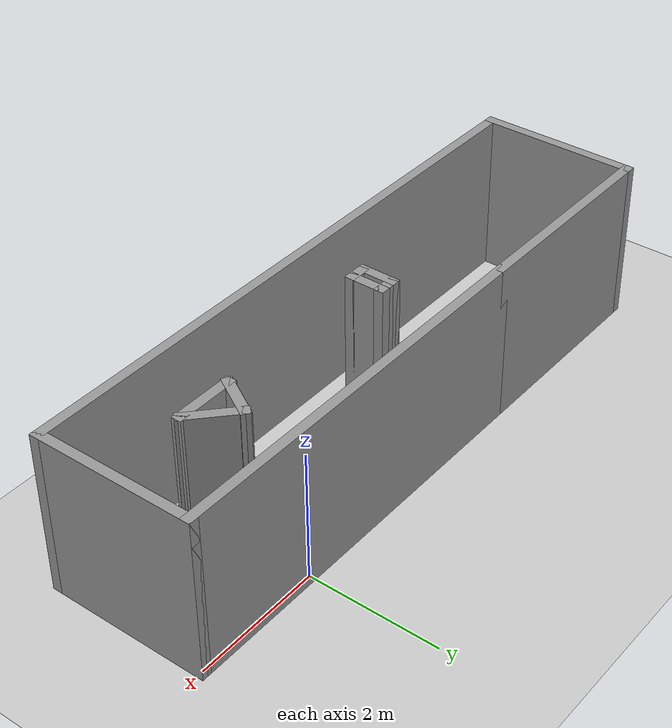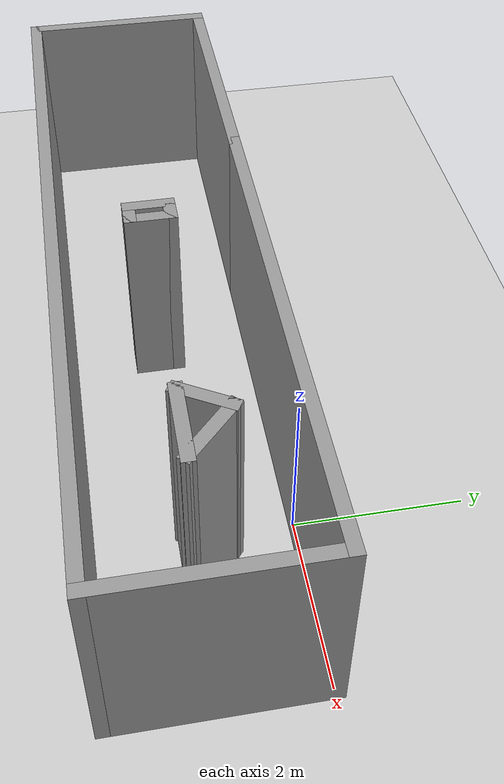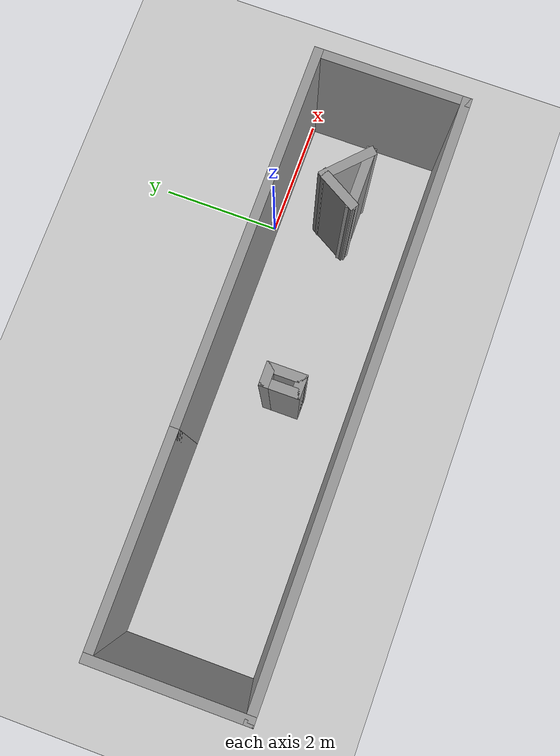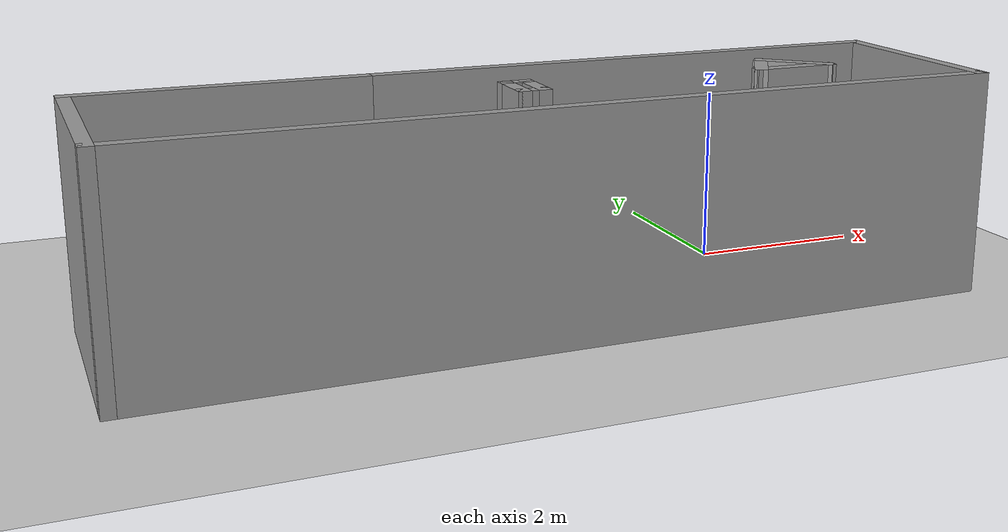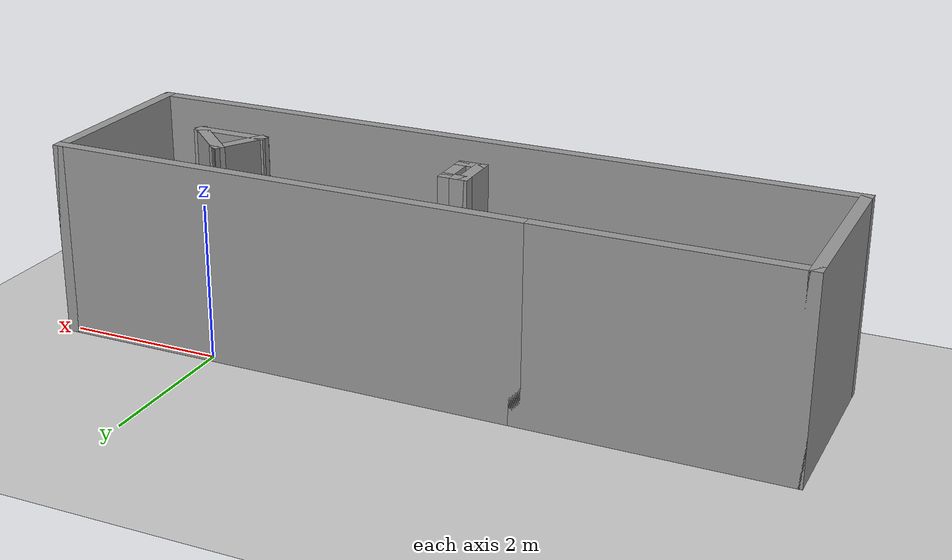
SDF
<sdf version="1.7">
 <world name="default">
  <light name="sun" type="directional">
   <pose>0 0 10 0 -0 0</pose>
   <diffuse>0.8 0.8 0.8 1</diffuse>
   <specular>0.2 0.2 0.2 1</specular>
   <attenuation>
    <range>1000</range>
    <constant>0.9</constant>
    <linear>0.01</linear>
    <quadratic>0.001</quadratic>
   </attenuation>
   <direction>-0.5 0.1 -0.9</direction>
   <spot><inner_angle>0</inner_angle><outer_angle>0</outer_angle><falloff>0</falloff></spot>
  </light>
  <model name="ground_plane">
   <static>1</static>
   <link name="link">
    <collision name="collision">
     <geometry><plane><normal>0 0 1</normal><size>100 100</size></plane></geometry>
     <surface>
      <contact><collide_bitmask>65535</collide_bitmask></contact>
      <friction><ode><mu>100</mu><mu2>50</mu2></ode></friction>
     </surface>
    </collision>
    <visual name="visual">
     <cast_shadows>0</cast_shadows>
     <geometry><plane><normal>0 0 1</normal><size>100 100</size></plane></geometry>
     <material>
      <script><uri>file://media/materials/scripts/gazebo.material</uri><name>Gazebo/Grey</name></script>
     </material>
    </visual>
   </link>
  </model>
  <gravity>0 0 -9.8</gravity>
  <magnetic_field>6e-06 2.3e-05 -4.2e-05</magnetic_field>
  <atmosphere type="adiabatic"/>
  <physics type="ode">
   <max_step_size>0.001</max_step_size>
   <real_time_factor>1</real_time_factor>
   <real_time_update_rate>1000</real_time_update_rate>
  </physics>
  <scene><ambient>0.4 0.4 0.4 1</ambient><background>0.7 0.7 0.7 1</background><shadows>1</shadows></scene>
  <audio><device>default</device></audio>
  <spherical_coordinates>
   <surface_model>EARTH_WGS84</surface_model>
   <latitude_deg>0</latitude_deg>
   <longitude_deg>0</longitude_deg>
   <elevation>0</elevation>
   <heading_deg>0</heading_deg>
  </spherical_coordinates>
  <model name="Untitled">
   <pose>-2.64542 -1.14959 0 0 -0 0</pose>
   <link name="Wall_0">
    <collision name="Wall_0_Collision">
     <geometry><box><size>6.25 0.15 2.5</size></box></geometry>
     <pose>0 0 1.25 0 -0 0</pose>
    </collision>
    <visual name="Wall_0_Visual">
     <pose>0 0 1.25 0 -0 0</pose>
     <geometry><box><size>6.25 0.15 2.5</size></box></geometry>
     <material>
      <script><uri>file://media/materials/scripts/gazebo.material</uri><name>Gazebo/Grey</name></script>
      <ambient>1 1 1 1</ambient>
     </material>
     <meta><layer>0</layer></meta>
    </visual>
    <pose>1.625 1.175 0 0 -0 0</pose>
   </link>
   <link name="Wall_1">
    <collision name="Wall_1_Collision">
     <geometry><box><size>2.5 0.15 2.5</size></box></geometry>
     <pose>0 0 1.25 0 -0 0</pose>
    </collision>
    <visual name="Wall_1_Visual">
     <pose>0 0 1.25 0 -0 0</pose>
     <geometry><box><size>2.5 0.15 2.5</size></box></geometry>
     <material>
      <script><uri>file://media/materials/scripts/gazebo.material</uri><name>Gazebo/Grey</name></script>
      <ambient>1 1 1 1</ambient>
     </material>
     <meta><layer>0</layer></meta>
    </visual>
    <pose>4.675 0 0 0 -0 -1.5708</pose>
   </link>
   <link name="Wall_11">
    <collision name="Wall_11_Collision">
     <geometry><box><size>0.75 0.15 2.5</size></box></geometry>
     <pose>0 0 1.25 0 -0 0</pose>
    </collision>
    <visual name="Wall_11_Visual">
     <pose>0 0 1.25 0 -0 0</pose>
     <geometry><box><size>0.75 0.15 2.5</size></box></geometry>
     <material>
      <script><uri>file://media/materials/scripts/gazebo.material</uri><name>Gazebo/Grey</name></script>
      <ambient>1 1 1 1</ambient>
     </material>
     <meta><layer>0</layer></meta>
    </visual>
    <pose>2.74488 0.172199 0 0 -0 -2.0944</pose>
   </link>
   <link name="Wall_12">
    <collision name="Wall_12_Collision">
     <geometry><box><size>1 0.15 2.5</size></box></geometry>
     <pose>0 0 1.25 0 -0 0</pose>
    </collision>
    <visual name="Wall_12_Visual">
     <pose>0 0 1.25 0 -0 0</pose>
     <geometry><box><size>1 0.15 2.5</size></box></geometry>
     <material>
      <script><uri>file://media/materials/scripts/gazebo.material</uri><name>Gazebo/Grey</name></script>
      <ambient>1 1 1 1</ambient>
     </material>
     <meta><layer>0</layer></meta>
    </visual>
    <pose>3.01988 -0.087609 0 0 -0 0</pose>
   </link>
   <link name="Wall_13">
    <collision name="Wall_13_Collision">
     <geometry><box><size>0.906637 0.15 2.5</size></box></geometry>
     <pose>0 0 1.25 0 -0 0</pose>
    </collision>
    <visual name="Wall_13_Visual">
     <pose>0 0 1.25 0 -0 0</pose>
     <geometry><box><size>0.906637 0.15 2.5</size></box></geometry>
     <material>
      <script><uri>file://media/materials/scripts/gazebo.material</uri><name>Gazebo/Grey</name></script>
      <ambient>1 1 1 1</ambient>
     </material>
     <meta><layer>0</layer></meta>
    </visual>
    <pose>3.16988 0.172199 0 0 -0 2.38459</pose>
   </link>
   <link name="Wall_2">
    <collision name="Wall_2_Collision">
     <geometry><box><size>9.5 0.15 2.5</size></box></geometry>
     <pose>0 0 1.25 0 -0 0</pose>
    </collision>
    <visual name="Wall_2_Visual">
     <pose>0 0 1.25 0 -0 0</pose>
     <geometry><box><size>9.5 0.15 2.5</size></box></geometry>
     <material>
      <script><uri>file://media/materials/scripts/gazebo.material</uri><name>Gazebo/Grey</name></script>
      <ambient>1 1 1 1</ambient>
     </material>
     <meta><layer>0</layer></meta>
    </visual>
    <pose>0 -1.175 0 0 -0 3.14159</pose>
   </link>
   <link name="Wall_3">
    <collision name="Wall_3_Collision">
     <geometry><box><size>2.5 0.15 2.5</size></box></geometry>
     <pose>0 0 1.25 0 -0 0</pose>
    </collision>
    <visual name="Wall_3_Visual">
     <pose>0 0 1.25 0 -0 0</pose>
     <geometry><box><size>2.5 0.15 2.5</size></box></geometry>
     <material>
      <script><uri>file://media/materials/scripts/gazebo.material</uri><name>Gazebo/Grey</name></script>
      <ambient>1 1 1 1</ambient>
     </material>
     <meta><layer>0</layer></meta>
    </visual>
    <pose>-4.675 0 0 0 -0 1.5708</pose>
   </link>
   <link name="Wall_4">
    <collision name="Wall_4_Collision">
     <geometry><box><size>3.4 0.15 2.5</size></box></geometry>
     <pose>0 0 1.25 0 -0 0</pose>
    </collision>
    <visual name="Wall_4_Visual">
     <pose>0 0 1.25 0 -0 0</pose>
     <geometry><box><size>3.4 0.15 2.5</size></box></geometry>
     <material>
      <script><uri>file://media/materials/scripts/gazebo.material</uri><name>Gazebo/Grey</name></script>
      <ambient>1 1 1 1</ambient>
     </material>
     <meta><layer>0</layer></meta>
    </visual>
    <pose>-3.05 1.175 0 0 -0 0</pose>
   </link>
   <link name="Wall_6">
    <collision name="Wall_6_Collision">
     <geometry><box><size>0.625 0.15 2.5</size></box></geometry>
     <pose>0 0 1.25 0 -0 0</pose>
    </collision>
    <visual name="Wall_6_Visual">
     <pose>0 0 1.25 0 -0 0</pose>
     <geometry><box><size>0.625 0.15 2.5</size></box></geometry>
     <material>
      <script><uri>file://media/materials/scripts/gazebo.material</uri><name>Gazebo/Grey</name></script>
      <ambient>1 1 1 1</ambient>
     </material>
     <meta><layer>0</layer></meta>
    </visual>
    <pose>-0.310402 -0.032516 0 0 -0 -1.5708</pose>
   </link>
   <link name="Wall_7">
    <collision name="Wall_7_Collision">
     <geometry><box><size>0.375 0.15 2.5</size></box></geometry>
     <pose>0 0 1.25 0 -0 0</pose>
    </collision>
    <visual name="Wall_7_Visual">
     <pose>0 0 1.25 0 -0 0</pose>
     <geometry><box><size>0.375 0.15 2.5</size></box></geometry>
     <material>
      <script><uri>file://media/materials/scripts/gazebo.material</uri><name>Gazebo/Grey</name></script>
      <ambient>1 1 1 1</ambient>
     </material>
     <meta><layer>0</layer></meta>
    </visual>
    <pose>-0.197902 -0.270016 0 0 -0 0</pose>
   </link>
   <link name="Wall_8">
    <collision name="Wall_8_Collision">
     <geometry><box><size>0.625 0.15 2.5</size></box></geometry>
     <pose>0 0 1.25 0 -0 0</pose>
    </collision>
    <visual name="Wall_8_Visual">
     <pose>0 0 1.25 0 -0 0</pose>
     <geometry><box><size>0.625 0.15 2.5</size></box></geometry>
     <material>
      <script><uri>file://media/materials/scripts/gazebo.material</uri><name>Gazebo/Grey</name></script>
      <ambient>1 1 1 1</ambient>
     </material>
     <meta><layer>0</layer></meta>
    </visual>
    <pose>-0.085402 -0.032516 0 0 -0 1.5708</pose>
   </link>
   <link name="Wall_9">
    <collision name="Wall_9_Collision">
     <geometry><box><size>0.375 0.15 2.5</size></box></geometry>
     <pose>0 0 1.25 0 -0 0</pose>
    </collision>
    <visual name="Wall_9_Visual">
     <pose>0 0 1.25 0 -0 0</pose>
     <geometry><box><size>0.375 0.15 2.5</size></box></geometry>
     <material>
      <script><uri>file://media/materials/scripts/gazebo.material</uri><name>Gazebo/Grey</name></script>
      <ambient>1 1 1 1</ambient>
     </material>
     <meta><layer>0</layer></meta>
    </visual>
    <pose>-0.197902 0.204984 0 0 -0 3.14159</pose>
   </link>
   <static>1</static>
  </model>
 </world>
</sdf>
